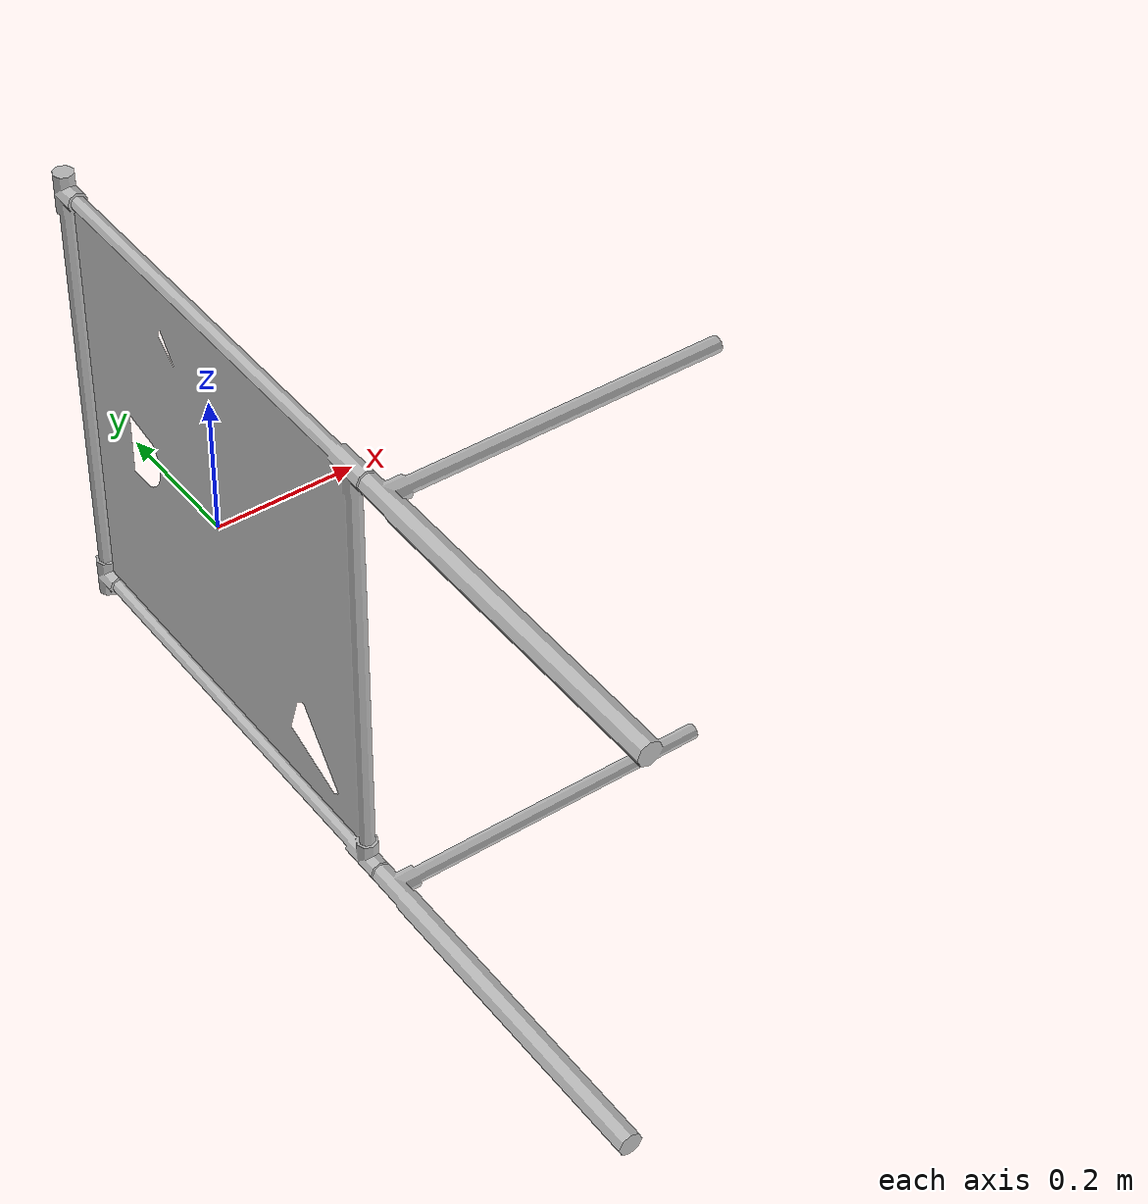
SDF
<?xml version="1.0"?>
<sdf version='1.7'>
  <model name='torpedoMapping_2026_v1'>
    <static>true</static>
    <link name='base_link'>
      <pose frame=''>0 0 0 0 0 0</pose>
      <inertial>
        <pose frame=''>0 0 0 0 0 0</pose>
        <mass>1</mass>
        <inertia>
          <ixx>0.166667</ixx>
          <ixy>0</ixy>
          <ixz>0</ixz>
          <iyy>0.166667</iyy>
          <iyz>0</iyz>
          <izz>0.166667</izz>
        </inertia>
      </inertial>
      <collision name='base_link_collision'>
        <pose frame=''>0 0 0 0 0 0</pose>
        <geometry>
          <mesh>
            <uri>file://torpedoMapping_2026_v1/torpedoMapping_2026_v1.obj</uri>
          </mesh>
        </geometry>
      </collision>
      <visual name='base_link_visual'>
        <pose frame=''>0 0 0 0 0 0</pose>
        <geometry>
          <mesh>
            <uri>file://torpedoMapping_2026_v1/torpedoMapping_2026_v1.obj</uri>
          </mesh>
        </geometry>
      </visual>
    </link>
  </model>
</sdf>
